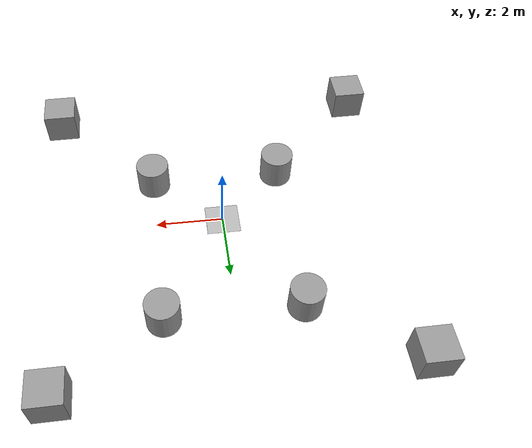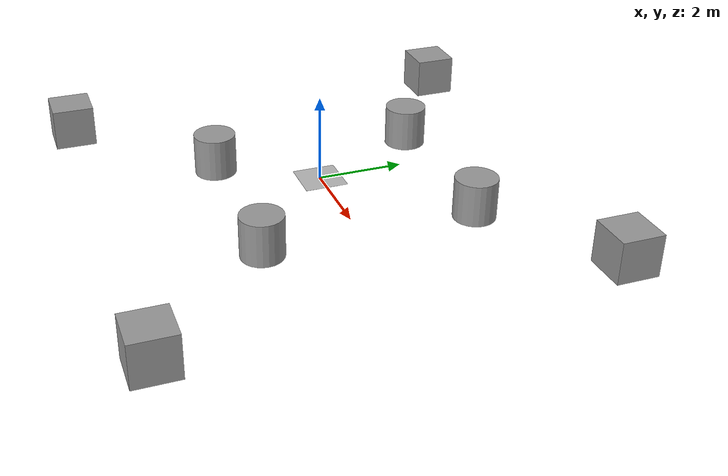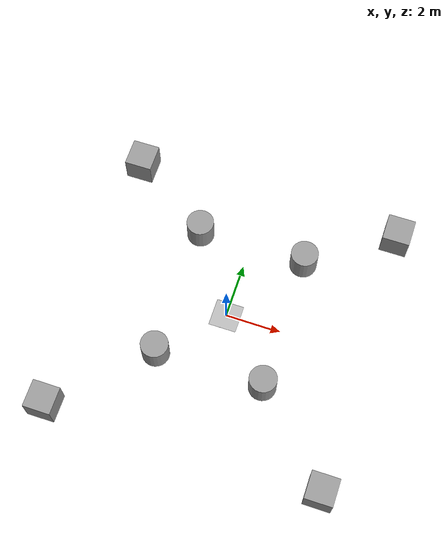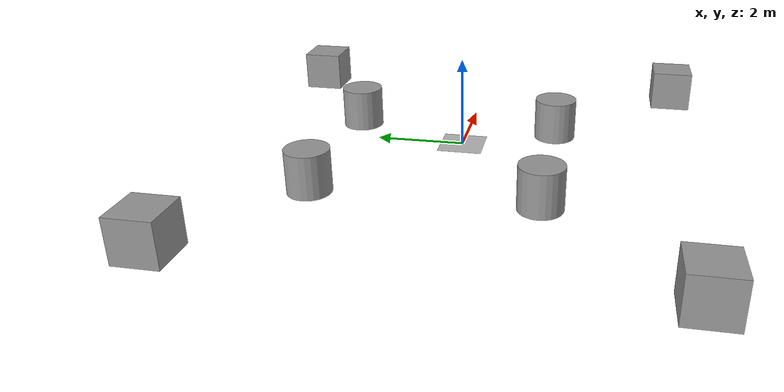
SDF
<sdf version="1.4">
 <world name="default">
  <scene><ambient>0.5 0.5 0.5 1</ambient><background>0.5 0.5 0.5 1</background><shadows>0</shadows></scene>
  <physics type="ode">
   <gravity>0 0 -9.8</gravity>
   <ode>
    <solver><type>quick</type><iters>10</iters><sor>1.3</sor></solver>
    <constraints>
     <cfm>0</cfm>
     <erp>0.2</erp>
     <contact_max_correcting_vel>100</contact_max_correcting_vel>
     <contact_surface_layer>0.001</contact_surface_layer>
    </constraints>
   </ode>
   <real_time_update_rate>1000</real_time_update_rate>
   <max_step_size>0.001</max_step_size>
   <real_time_factor>1</real_time_factor>
  </physics>
  <model name="plane1_model">
   <link name="body">
    <collision name="geom_1">
     <geometry><plane><normal>0 0 1</normal><size>1 1</size></plane></geometry>
     <surface>
      <friction><ode><mu>10</mu><mu2>10</mu2><fdir1>0 0 0</fdir1><slip1>0</slip1><slip2>0</slip2></ode></friction>
      <bounce><restitution_coefficient>0</restitution_coefficient><threshold>1e+06</threshold></bounce>
      <contact>
       <ode>
        <soft_cfm>0</soft_cfm>
        <soft_erp>0.2</soft_erp>
        <kp>1e+10</kp>
        <kd>1</kd>
        <max_vel>100</max_vel>
        <min_depth>0.0001</min_depth>
       </ode>
      </contact>
     </surface>
    </collision>
    <visual name="visual_1">
     <geometry><plane><normal>0 0 1</normal><size>1 1</size></plane></geometry>
     <material><script><uri>__default__</uri><name>__default__</name></script></material>
     <cast_shadows>0</cast_shadows>
    </visual>
    <velocity_decay><linear>0</linear><angular>0</angular></velocity_decay>
   </link>
   <static>1</static>
  </model>
  <light name="my_light" type="directional">
   <pose>0 0 30 0 -0 0</pose>
   <diffuse>0.9 0.9 0.9 1</diffuse>
   <specular>0.1 0.1 0.1 1</specular>
   <attenuation><range>20</range></attenuation>
   <direction>0 0 -1</direction>
   <cast_shadows>0</cast_shadows>
  </light>
  <spherical_coordinates>
   <surface_model>EARTH_WGS84</surface_model>
   <latitude_deg>0</latitude_deg>
   <longitude_deg>0</longitude_deg>
   <elevation>0</elevation>
   <heading_deg>0</heading_deg>
  </spherical_coordinates>
  <model name="unit_box_2">
   <pose>5 -5 0.005066 0 -2e-06 0</pose>
   <link name="link">
    <inertial>
     <mass>1</mass>
     <inertia><ixx>1</ixx><ixy>0</ixy><ixz>0</ixz><iyy>1</iyy><iyz>0</iyz><izz>1</izz></inertia>
    </inertial>
    <collision name="collision">
     <geometry><box><size>0.701124 0.807745 0.010133</size></box></geometry>
    </collision>
    <visual name="visual">
     <geometry><box><size>1 1 1</size></box></geometry>
     <material>
      <script><uri>file://media/materials/scripts/gazebo.material</uri><name>Gazebo/Grey</name></script>
     </material>
    </visual>
    <velocity_decay><linear>0</linear><angular>0</angular></velocity_decay>
   </link>
   <static>0</static>
  </model>
  <model name="unit_box_3">
   <pose>5 5 0.004182 -3e-06 -0 -0</pose>
   <link name="link">
    <inertial>
     <mass>1</mass>
     <inertia><ixx>1</ixx><ixy>0</ixy><ixz>0</ixz><iyy>1</iyy><iyz>0</iyz><izz>1</izz></inertia>
    </inertial>
    <collision name="collision">
     <geometry><box><size>0.754005 0.792509 0.008366</size></box></geometry>
    </collision>
    <visual name="visual">
     <geometry><box><size>1 1 1</size></box></geometry>
     <material>
      <script><uri>file://media/materials/scripts/gazebo.material</uri><name>Gazebo/Grey</name></script>
     </material>
    </visual>
    <velocity_decay><linear>0</linear><angular>0</angular></velocity_decay>
   </link>
   <static>0</static>
  </model>
  <model name="unit_box_4">
   <pose>-5.00001 5 0.000494 -1e-06 -1.03398e-25 0.000296</pose>
   <link name="link">
    <inertial>
     <mass>1</mass>
     <inertia><ixx>1</ixx><ixy>0</ixy><ixz>0</ixz><iyy>1</iyy><iyz>0</iyz><izz>1</izz></inertia>
    </inertial>
    <collision name="collision">
     <geometry><box><size>0.757529 0.806654 0.000986</size></box></geometry>
    </collision>
    <visual name="visual">
     <geometry><box><size>1 1 1</size></box></geometry>
     <material>
      <script><uri>file://media/materials/scripts/gazebo.material</uri><name>Gazebo/Grey</name></script>
     </material>
    </visual>
    <velocity_decay><linear>0</linear><angular>0</angular></velocity_decay>
   </link>
   <static>0</static>
  </model>
  <model name="unit_cylinder_1">
   <pose>-1.98678 -1.99074 0.031278 4e-06 -1.32349e-23 0.013991</pose>
   <link name="link">
    <inertial>
     <mass>1</mass>
     <inertia><ixx>1</ixx><ixy>0</ixy><ixz>0</ixz><iyy>1</iyy><iyz>0</iyz><izz>1</izz></inertia>
    </inertial>
    <collision name="collision">
     <geometry><cylinder><radius>0.5</radius><length>0.00255487</length></cylinder></geometry>
    </collision>
    <visual name="visual">
     <geometry><cylinder><radius>0.5</radius><length>1</length></cylinder></geometry>
     <material>
      <script><uri>file://media/materials/scripts/gazebo.material</uri><name>Gazebo/Grey</name></script>
     </material>
    </visual>
    <velocity_decay><linear>0</linear><angular>0</angular></velocity_decay>
   </link>
   <static>0</static>
  </model>
  <model name="unit_cylinder_2">
   <pose>2 -2 0.002189 0 -0 0</pose>
   <link name="link">
    <inertial>
     <mass>1</mass>
     <inertia><ixx>1</ixx><ixy>0</ixy><ixz>0</ixz><iyy>1</iyy><iyz>0</iyz><izz>1</izz></inertia>
    </inertial>
    <collision name="collision">
     <geometry><cylinder><radius>0.5</radius><length>0.00439486</length></cylinder></geometry>
    </collision>
    <visual name="visual">
     <geometry><cylinder><radius>0.5</radius><length>1</length></cylinder></geometry>
     <material>
      <script><uri>file://media/materials/scripts/gazebo.material</uri><name>Gazebo/Grey</name></script>
     </material>
    </visual>
    <velocity_decay><linear>0</linear><angular>0</angular></velocity_decay>
   </link>
   <static>0</static>
  </model>
  <model name="unit_cylinder_3">
   <pose>2 3 0.000158 0 -0 0</pose>
   <link name="link">
    <inertial>
     <mass>1</mass>
     <inertia><ixx>1</ixx><ixy>0</ixy><ixz>0</ixz><iyy>1</iyy><iyz>0</iyz><izz>1</izz></inertia>
    </inertial>
    <collision name="collision">
     <geometry><cylinder><radius>0.5</radius><length>0.000333141</length></cylinder></geometry>
    </collision>
    <visual name="visual">
     <geometry><cylinder><radius>0.5</radius><length>1</length></cylinder></geometry>
     <material>
      <script><uri>file://media/materials/scripts/gazebo.material</uri><name>Gazebo/Grey</name></script>
     </material>
    </visual>
    <velocity_decay><linear>0</linear><angular>0</angular></velocity_decay>
   </link>
   <static>0</static>
  </model>
  <model name="unit_cylinder_4">
   <pose>-2 3 0.005325 0 -0 0</pose>
   <link name="link">
    <inertial>
     <mass>1</mass>
     <inertia><ixx>1</ixx><ixy>0</ixy><ixz>0</ixz><iyy>1</iyy><iyz>0</iyz><izz>1</izz></inertia>
    </inertial>
    <collision name="collision">
     <geometry><cylinder><radius>0.5</radius><length>0.0106669</length></cylinder></geometry>
    </collision>
    <visual name="visual">
     <geometry><cylinder><radius>0.5</radius><length>1</length></cylinder></geometry>
     <material>
      <script><uri>file://media/materials/scripts/gazebo.material</uri><name>Gazebo/Grey</name></script>
     </material>
    </visual>
    <velocity_decay><linear>0</linear><angular>0</angular></velocity_decay>
   </link>
   <static>0</static>
  </model>
  <model name="unit_box_1_0">
   <pose>-5.0005 -5.00019 0.002161 0 0 -0.000245</pose>
   <link name="link">
    <inertial>
     <mass>1</mass>
     <inertia><ixx>1</ixx><ixy>0</ixy><ixz>0</ixz><iyy>1</iyy><iyz>0</iyz><izz>1</izz></inertia>
    </inertial>
    <collision name="collision"><geometry><box><size>1 1 0.004321</size></box></geometry></collision>
    <visual name="visual">
     <geometry><box><size>1 1 1</size></box></geometry>
     <material>
      <script><uri>file://media/materials/scripts/gazebo.material</uri><name>Gazebo/Grey</name></script>
     </material>
    </visual>
    <velocity_decay><linear>0</linear><angular>0</angular></velocity_decay>
   </link>
   <static>0</static>
  </model>
 </world>
</sdf>
